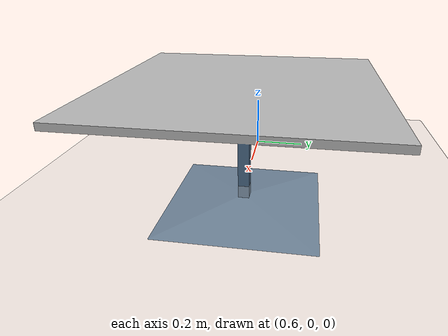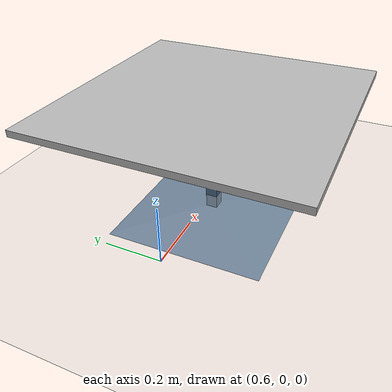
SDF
<?xml version="1.0" ?>
<sdf version="1.4">
  <world name="default">
    <include>
      <uri>model://ground_plane</uri>
    </include>
    <include>
      <uri>model://sun</uri>
    </include>
    <include>
      <uri>model://cafe_table</uri>
      <name>cafe_table</name>
      <pose>1.0 0 -0.08 0 0 0</pose>
    </include>
  </world>
</sdf>

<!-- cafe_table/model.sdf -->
<sdf version="1.5">
  <model name="cafe_table">
    <static>true</static>
    <link name="link">
      <collision name="surface">
        <pose>0 0 0.45 0 0 0</pose>
        <geometry>
          <box>
            <size>0.913 0.913 0.035</size>
          </box>
        </geometry>
      </collision>

      <collision name="column">
        <pose>0 0 0.37 0 0 0</pose>
        <geometry>
          <box>
            <size>0.042 0.042 0.15</size>
          </box>
        </geometry>
      </collision>

      <collision name="base">
        <pose>0 0 0.02 0 0 0</pose>
        <geometry>
          <box>
            <size>0.56 0.56 0.04</size>
          </box>
        </geometry>
      </collision>

      <visual name="visual">
        <geometry>
          <mesh>
            <scale>1 1 0.6</scale>
            <uri>file://isr-testbed/cafe_table/meshes/cafe_table.dae</uri>
          </mesh>
        </geometry>
      </visual>
    </link>
  </model>
</sdf>
